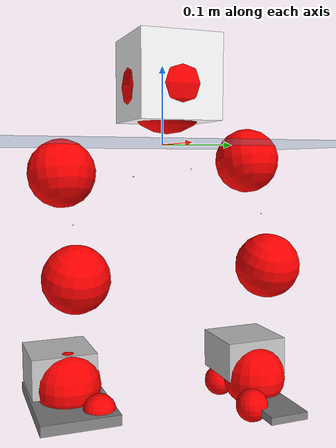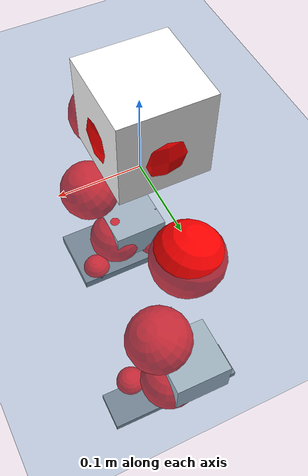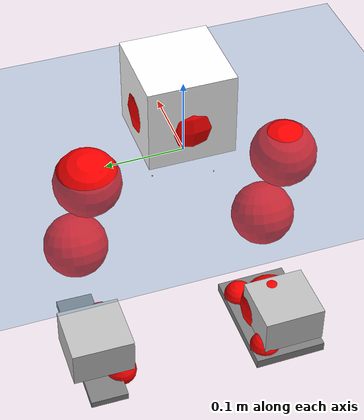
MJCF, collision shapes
<mujoco model="pi_12dof_release_v1">
  <compiler angle="radian" assetdir="assets" balanceinertia="true" inertiafromgeom="false"/>

  <option timestep="0.005" density="1.2" viscosity="2e-05"/>

  <size nkey="1"/>

  <visual>
    <quality shadowsize="8192"/>
    <map shadowclip="0.5"/>
  </visual>

  <default>
    <default class="/">
      <joint armature="0.01" damping="0.01" frictionloss="0.01"/>
      <geom contype="0" conaffinity="0" group="1" solref="-1000 -80"/>
      <site size="0.01 0.005 0.005" group="5"/>
      <general forcelimited="true" biastype="affine" gainprm="20" biasprm="0 -20 -0.5"/>
      <default class="foot">
        <geom size="0.0845 0.036 0.005" type="box" condim="6" group="4" priority="1" friction="0.9 0.2 0.2" solimp="0.015 1 0.005"/>
      </default>
      <default class="reward_collision_sphere">
        <geom group="5" rgba="1 0 0 1"/>
      </default>
    </default>
  </default>

  <asset>
    <texture type="skybox" colorspace="auto" name="//unnamed_texture_0" builtin="gradient" rgb1="0.95 0.95 0.95" rgb2="0.95 0.95 0.95" width="100" height="600"/>
    <texture type="2d" colorspace="auto" name="texplane" builtin="checker" rgb1="0.345 0.575 0.748" rgb2="0.345 0.575 0.748" markrgb="1 1 1" width="512" height="512"/>
    <material name="MatPlane" class="/" texture="texplane" texuniform="true" texrepeat="2 2" specular="0.9"/>
    <mesh name="baselink_1" class="/" file="baselink_1.STL"/>
    <mesh name="r_hip_pitch_link" class="/" file="r_hip_pitch_link.STL"/>
    <mesh name="r_hip_roll_link" class="/" file="r_hip_roll_link.STL"/>
    <mesh name="r_thigh_link" class="/" file="r_thigh_link.STL"/>
    <mesh name="r_calf_link" class="/" file="r_calf_link.STL"/>
    <mesh name="r_ankle_pitch_link" class="/" file="r_ankle_pitch_link.STL"/>
    <mesh name="r_ankle_roll_link" class="/" file="r_ankle_roll_link.STL"/>
    <mesh name="l_hip_pitch_link" class="/" file="l_hip_pitch_link.STL"/>
    <mesh name="l_hip_roll_link" class="/" file="l_hip_roll_link.STL"/>
    <mesh name="l_thigh_link" class="/" file="l_thigh_link.STL"/>
    <mesh name="l_calf_link" class="/" file="l_calf_link.STL"/>
    <mesh name="l_ankle_pitch_link" class="/" file="l_ankle_pitch_link.STL"/>
    <mesh name="l_ankle_roll_link" class="/" file="l_ankle_roll_link.STL"/>
  </asset>

  <worldbody>
    <geom name="floor" class="/" size="100 100 0.125" type="plane" group="0" material="MatPlane"/>
    <light name="toplight_shadow" class="/" pos="0 0 5" dir="0.0990148 0.0990148 -0.990148" type="directional" ambient="0.04 0.04 0.04" diffuse="0.55 0.55 0.55" specular="0.12 0.12 0.12"/>
    <light name="toplight_fill" class="/" pos="0 0 5" dir="0.0990148 0.0990148 -0.990148" type="directional" castshadow="false" ambient="0.04 0.04 0.04" diffuse="0.3 0.3 0.3" specular="0.08 0.08 0.08"/>
    <body name="trunk" pos="-0.000845163 0.00708967 0.00147815" quat="1 -2.79089e-05 1.87442e-06 -4.49946e-05">
      <inertial pos="0.000764669 0.00769627 0.0411138" quat="0.711244 0.0539856 -0.0203865 0.700572" mass="2.77926" diaginertia="0.00258528 0.0608833 0.00471854"/>
      <joint name="//unnamed_joint_0" type="free"/>
      <geom name="//unnamed_geom_1" class="/" type="mesh" density="0" rgba="1 1 1 1" mesh="baselink_1"/>
      <geom name="//unnamed_geom_2" class="/" size="0.0540256 0.0540256 0.0540256" pos="0 0 0.081977" type="box" rgba="1 1 1 1"/>
      <geom name="//unnamed_geom_3" class="reward_collision_sphere" size="0.0594282" pos="0 0 0.0717299"/>
      <site name="imu" class="/" pos="-0.0337944 -0.0221731 0.0353717" size="0.0108051"/>
      <camera name="track" class="/" pos="0 -2.91613 0" quat="0.707107 0.707107 0 0" mode="trackcom"/>
      <camera name="ego_camera" class="/" pos="0.056907 0 0.184448" quat="-0.5 -0.5 0.5 0.5"/>
      <body name="r_hip_pitch_link" pos="-0.00574721 -0.0451919 -0.0430033" quat="0.992564 0.00230478 -0.121703 -4.20647e-06">
        <inertial pos="0.000554235 -0.0826816 -0.00382852" quat="-0.0192514 0.710613 -0.0276587 0.702776" mass="0.496673" diaginertia="2.71468e-05 0.000706336 9.1431e-05"/>
        <joint name="r_hip_pitch_joint" class="/" pos="0 0 0" axis="-0.00350705 -0.999934 0.0109688" stiffness="0.00414589" range="-1.73221 1.33388" armature="0.0116922" damping="0.020391" frictionloss="0.0110694"/>
        <geom name="//unnamed_geom_4" class="/" type="mesh" density="0" rgba="0.75294 0.75294 0.75294 1" mesh="r_hip_pitch_link"/>
        <geom name="//unnamed_geom_5" class="/" size="0.000540256 0.000540256 0.000540256" type="box" rgba="0.75294 0.75294 0.75294 1"/>
        <body name="r_hip_roll_link" pos="-2.52872e-06 -0.094114 0.00511666" quat="0.999995 0.0012052 -0.00150857 0.00240406">
          <inertial pos="-0.00743837 -0.00448434 -0.0661641" quat="0.733786 -0.0630704 -0.0756731 0.672201" mass="0.489703" diaginertia="8.73862e-05 0.00186866 0.000150544"/>
          <joint name="r_hip_roll_joint" class="/" pos="0 0 0" axis="-0.999621 -0.0135759 -0.0239321" stiffness="0.015566" range="-0.150681 0.341064" armature="0.0140833" damping="0.0762268" frictionloss="0.00989696"/>
          <geom name="//unnamed_geom_6" class="/" type="mesh" density="0" rgba="0.75294 0.75294 0.75294 1" mesh="r_hip_roll_link"/>
          <geom name="//unnamed_geom_7" class="/" size="0.000540256 0.000540256 0.000540256" type="box" rgba="0.75294 0.75294 0.75294 1"/>
          <geom name="//unnamed_geom_8" class="reward_collision_sphere" size="0.0432205"/>
          <body name="r_thigh_link" pos="0.00123289 0.00958375 -0.0661578" quat="0.999998 -0.00169123 0.000818811 -0.000641134">
            <inertial pos="-0.00535635 0.00219801 -0.0379092" quat="0.738293 0.674471 -0.00362476 0.000209408" mass="0.14187" diaginertia="3.45284e-05 0.000551699 7.4805e-05"/>
            <joint name="r_thigh_joint" class="/" pos="0 0 0" axis="-0.0120322 -0.0112568 -0.999864" stiffness="0.0225574" range="-0.180553 0.583116" armature="0.0123723" damping="0.00970205" frictionloss="0.0115492"/>
            <geom name="//unnamed_geom_9" class="/" type="mesh" density="0" rgba="0.75294 0.75294 0.75294 1" mesh="r_thigh_link"/>
            <geom name="//unnamed_geom_10" class="/" size="0.000540256 0.000540256 0.000540256" type="box" rgba="0.75294 0.75294 0.75294 1"/>
            <body name="r_calf_link" pos="-0.00306596 -0.000453025 -0.0678706" quat="0.947594 0.000473747 0.319475 0.000130116">
              <inertial pos="0.0016809 -0.00180535 -0.0718059" quat="0.999909 -0.0107889 0.00252396 0.00768683" mass="1.1588" diaginertia="0.000916665 0.026933 0.000182303"/>
              <joint name="r_calf_joint" class="/" pos="0 0 0" axis="0.0110687 -0.999761 0.0188544" stiffness="0.0176067" range="-1.88137 0.569666" armature="0.0111664" damping="0.00802128" frictionloss="0.00884695"/>
              <geom name="//unnamed_geom_11" class="/" type="mesh" density="0" rgba="0.75294 0.75294 0.75294 1" mesh="r_calf_link"/>
              <geom name="//unnamed_geom_12" class="/" size="0.000540256 0.000540256 0.000540256" type="box" rgba="0.75294 0.75294 0.75294 1"/>
              <geom name="//unnamed_geom_13" class="reward_collision_sphere" size="0.0432205"/>
              <body name="r_ankle_pitch_link" pos="-0.0100073 -0.0110593 -0.148465" quat="0.980186 -0.0007735 -0.198074 0.00152569">
                <inertial pos="0.00711098 0.0161825 -0.00208587" quat="0.0209121 0.695998 -0.00383602 0.717729" mass="0.184523" diaginertia="7.1105e-05 0.00131104 0.000125444"/>
                <joint name="r_ankle_pitch_joint" class="/" pos="0 0 0" axis="-0.0260362 -0.99877 0.0422039" range="-1.36684 0.306293" armature="0.0116395" damping="0" frictionloss="0.0119086"/>
                <geom name="//unnamed_geom_14" class="/" type="mesh" density="0" rgba="0.75294 0.75294 0.75294 1" mesh="r_ankle_pitch_link"/>
                <geom name="//unnamed_geom_15" class="/" size="0.04214 0.0432205 0.0270128" type="box" rgba="0.75294 0.75294 0.75294 1"/>
                <body name="r_ankle_roll_link" pos="0.0672855 0.00633387 0.00556406" quat="0.999991 -0.00310492 -0.000907908 -0.00268777">
                  <inertial pos="-0.0201623 0.0018199 -0.02074" quat="0.57928 0.425324 0.432881 0.544195" mass="0.663464" diaginertia="0.000282645 0.00679452 0.000312957"/>
                  <joint name="r_ankle_roll_joint" class="/" pos="0 0 0" axis="-0.999983 -0.00287446 -0.00505194" range="0.0616627 0.180707" armature="0.0114172" damping="0.00476162" frictionloss="0.0128619"/>
                  <geom name="//unnamed_geom_16" class="/" type="mesh" density="0" rgba="0.75294 0.75294 0.75294 1" mesh="r_ankle_roll_link"/>
                  <geom name="//unnamed_geom_17" class="/" type="mesh" rgba="0.75294 0.75294 0.75294 1" mesh="r_ankle_roll_link"/>
                  <geom name="right_foot" class="foot" size="0.0781225 0.0504403 0.00694595" pos="-0.0386967 0 -0.0450873"/>
                  <geom name="//unnamed_geom_19" class="reward_collision_sphere" size="0.0432205" pos="-0.037938 0 -0.0204942"/>
                  <geom name="//unnamed_geom_20" class="reward_collision_sphere" size="0.0216103" pos="0.0113814 0.0291613 -0.0409885"/>
                  <geom name="//unnamed_geom_21" class="reward_collision_sphere" size="0.0216103" pos="-0.0910511 0.0291613 -0.0409885"/>
                  <site name="right_foot" class="foot" pos="-0.0386967 0 -0.0450873" size="0.0108051"/>
                </body>
              </body>
            </body>
          </body>
        </body>
      </body>
      <body name="l_hip_pitch_link" pos="0.0010262 0.0335234 -0.033886" quat="0.992208 0.000616361 -0.124593 -0.000591936">
        <inertial pos="0.00213734 0.0871144 -0.00441625" quat="-0.038657 0.705571 0.0348199 0.706727" mass="0.468592" diaginertia="3.13497e-05 0.000666952 0.000108506"/>
        <joint name="l_hip_pitch_joint" class="/" pos="0 0 0" axis="0.00208346 0.999983 0.00553127" range="-1.22453 1.73451" armature="0.0101786" damping="0.0413811" frictionloss="0.00772296"/>
        <geom name="//unnamed_geom_22" class="/" type="mesh" density="0" rgba="0.75294 0.75294 0.75294 1" mesh="l_hip_pitch_link"/>
        <geom name="//unnamed_geom_23" class="/" size="0.000540256 0.000540256 0.000540256" type="box" rgba="0.75294 0.75294 0.75294 1"/>
        <body name="l_hip_roll_link" pos="0.00505291 0.0824343 0.0101988" quat="1 -1.08416e-05 0.000242017 -5.44984e-05">
          <inertial pos="0.00303579 -0.00112268 -0.0522904" quat="0.692387 -0.077922 -0.0994277 0.710382" mass="0.408916" diaginertia="8.23114e-05 0.00172195 0.000138784"/>
          <joint name="l_hip_roll_joint" class="/" pos="0 0 0" axis="-0.999314 0.0321567 0.0183547" stiffness="0.00860434" range="-0.302402 0.0963846" armature="0.00664003" damping="0.00890315" frictionloss="0.00966565"/>
          <geom name="//unnamed_geom_24" class="/" type="mesh" density="0" rgba="0.75294 0.75294 0.75294 1" mesh="l_hip_roll_link"/>
          <geom name="//unnamed_geom_25" class="/" size="0.000540256 0.000540256 0.000540256" type="box" rgba="0.75294 0.75294 0.75294 1"/>
          <geom name="//unnamed_geom_26" class="reward_collision_sphere" size="0.0432205"/>
          <body name="l_thigh_link" pos="0.00468071 0.0113553 -0.0752383" quat="1 0.00016466 -0.000107066 -0.000219367">
            <inertial pos="-0.000380156 -0.0030891 -0.0500027" quat="0.670233 0.742132 0.000228788 0.00524317" mass="0.12524" diaginertia="2.6363e-05 0.000573237 6.13696e-05"/>
            <joint name="l_thigh_joint" class="/" pos="0 0 0" axis="-0.00143132 0.0027252 -0.999995" range="-0.586359 0.300776" armature="0.0135276" damping="0" frictionloss="0.0107768"/>
            <geom name="//unnamed_geom_27" class="/" type="mesh" density="0" rgba="0.75294 0.75294 0.75294 1" mesh="l_thigh_link"/>
            <geom name="//unnamed_geom_28" class="/" size="0.000540256 0.000540256 0.000540256" type="box" rgba="0.75294 0.75294 0.75294 1"/>
            <body name="l_calf_link" pos="-0.00209534 0.00162839 -0.0706263" quat="0.94812 0.00362253 0.317889 -0.00150034">
              <inertial pos="-0.000542074 -0.00260454 -0.0659616" quat="0.999973 0.00462291 0.0014949 0.00545801" mass="0.990036" diaginertia="0.000764667 0.0211895 0.000163882"/>
              <joint name="l_calf_joint" class="/" pos="0 0 0" axis="0.0201317 0.999625 0.0185575" stiffness="0.00836447" range="-0.655168 1.70193" armature="0.0103315" damping="0.00332963" frictionloss="0.00982644"/>
              <geom name="//unnamed_geom_29" class="/" type="mesh" density="0" rgba="0.75294 0.75294 0.75294 1" mesh="l_calf_link"/>
              <geom name="//unnamed_geom_30" class="/" size="0.000540256 0.000540256 0.000540256" type="box" rgba="0.75294 0.75294 0.75294 1"/>
              <geom name="//unnamed_geom_31" class="reward_collision_sphere" size="0.0432205"/>
              <body name="l_ankle_pitch_link" pos="0.00213167 -0.00603679 -0.146701" quat="0.979456 0.00327692 -0.20163 -0.000749957">
                <inertial pos="0.00345237 0.00805444 -0.00472896" quat="-0.00226464 0.706851 0.00193059 0.707356" mass="0.240429" diaginertia="8.35785e-05 0.00158333 0.000143934"/>
                <joint name="l_ankle_pitch_joint" class="/" pos="0 0 0" axis="-0.00392864 0.99985 -0.0168819" stiffness="0.00882697" range="-0.360661 1.19888" armature="0.0115277" damping="0.00443365" frictionloss="0.01095"/>
                <geom name="//unnamed_geom_32" class="/" type="mesh" density="0" rgba="0.75294 0.75294 0.75294 1" mesh="l_ankle_pitch_link"/>
                <geom name="//unnamed_geom_33" class="/" size="0.04214 0.0432205 0.0270128" type="box" rgba="0.75294 0.75294 0.75294 1"/>
                <body name="l_ankle_roll_link" pos="0.0690693 8.53585e-05 -0.00586521" quat="0.999999 -0.000517557 0.00106624 -0.00111057">
                  <inertial pos="-0.0297962 -0.000176764 -0.0138361" quat="0.555999 0.42505 0.433431 0.567745" mass="0.652211" diaginertia="0.000255891 0.00701553 0.000326249"/>
                  <joint name="l_ankle_roll_joint" class="/" pos="0 0 0" axis="-0.998505 0.0364689 -0.040724" stiffness="0.0125699" range="-0.369491 0.287881" armature="0.00597161" damping="0" frictionloss="0.0152785"/>
                  <geom name="//unnamed_geom_34" class="/" type="mesh" density="0" rgba="0.75294 0.75294 0.75294 1" mesh="l_ankle_roll_link"/>
                  <geom name="//unnamed_geom_35" class="/" type="mesh" rgba="0.75294 0.75294 0.75294 1" mesh="l_ankle_roll_link"/>
                  <geom name="left_foot" class="foot" size="0.097167 0.0263481 0.00499716" pos="-0.0386967 0 -0.0450873"/>
                  <geom name="//unnamed_geom_37" class="reward_collision_sphere" size="0.0432205" pos="-0.037938 0 -0.0204942"/>
                  <geom name="//unnamed_geom_38" class="reward_collision_sphere" size="0.0216103" pos="0.0113814 -0.0291613 -0.0409885"/>
                  <geom name="//unnamed_geom_39" class="reward_collision_sphere" size="0.0216103" pos="-0.0910511 -0.0291613 -0.0409885"/>
                  <site name="left_foot" class="foot" pos="-0.0386967 0 -0.0450873" size="0.0108051"/>
                </body>
              </body>
            </body>
          </body>
        </body>
      </body>
    </body>
  </worldbody>

  <contact>
    <pair class="/" geom1="floor" geom2="right_foot" name="//unnamed_contact_1"/>
    <pair class="/" geom1="floor" geom2="left_foot" name="//unnamed_contact_0"/>
  </contact>

  <actuator>
    <general name="r_hip_pitch_joint" class="/" joint="r_hip_pitch_joint" forcerange="-23.3598 23.3598" gainprm="24.1808" biasprm="0 -24.1808 -0.571168"/>
    <general name="r_hip_roll_joint" class="/" joint="r_hip_roll_joint" forcerange="-22.8351 22.8351" gainprm="24.1808" biasprm="0 -24.1808 -0.571168"/>
    <general name="r_thigh_joint" class="/" joint="r_thigh_joint" forcerange="-17.8138 17.8138" gainprm="24.1808" biasprm="0 -24.1808 -0.571168"/>
    <general name="r_calf_joint" class="/" joint="r_calf_joint" forcerange="-30.1212 30.1212" gainprm="24.1808" biasprm="0 -24.1808 -0.571168"/>
    <general name="r_ankle_pitch_joint" class="/" joint="r_ankle_pitch_joint" forcerange="-14.3802 14.3802" gainprm="24.1808" biasprm="0 -24.1808 -0.571168"/>
    <general name="r_ankle_roll_joint" class="/" joint="r_ankle_roll_joint" forcerange="-14.3035 14.3035" gainprm="24.1808" biasprm="0 -24.1808 -0.571168"/>
    <general name="l_hip_pitch_joint" class="/" joint="l_hip_pitch_joint" forcerange="-12.9578 12.9578" gainprm="24.1808" biasprm="0 -24.1808 -0.571168"/>
    <general name="l_hip_roll_joint" class="/" joint="l_hip_roll_joint" forcerange="-27.5915 27.5915" gainprm="24.1808" biasprm="0 -24.1808 -0.571168"/>
    <general name="l_thigh_joint" class="/" joint="l_thigh_joint" forcerange="-23.7378 23.7378" gainprm="24.1808" biasprm="0 -24.1808 -0.571168"/>
    <general name="l_calf_joint" class="/" joint="l_calf_joint" forcerange="-14.3652 14.3652" gainprm="24.1808" biasprm="0 -24.1808 -0.571168"/>
    <general name="l_ankle_pitch_joint" class="/" joint="l_ankle_pitch_joint" forcerange="-14.3337 14.3337" gainprm="24.1808" biasprm="0 -24.1808 -0.571168"/>
    <general name="l_ankle_roll_joint" class="/" joint="l_ankle_roll_joint" forcerange="-17.9529 17.9529" gainprm="24.1808" biasprm="0 -24.1808 -0.571168"/>
  </actuator>

  <sensor>
    <gyro site="imu" name="imu_angular_velocity"/>
    <velocimeter site="imu" name="imu_linear_velocity"/>
    <framelinvel objtype="site" objname="left_foot" name="left_foot_global_linear_velocity"/>
    <framelinvel objtype="site" objname="right_foot" name="right_foot_global_linear_velocity"/>
  </sensor>

  <keyframe>
    <key name="home" qpos="0 0 0.291 1 0 0 0 0.4 0 0 -0.8 0.4 0 -0.4 0 0 0.8 -0.4 0"/>
  </keyframe>
</mujoco>
